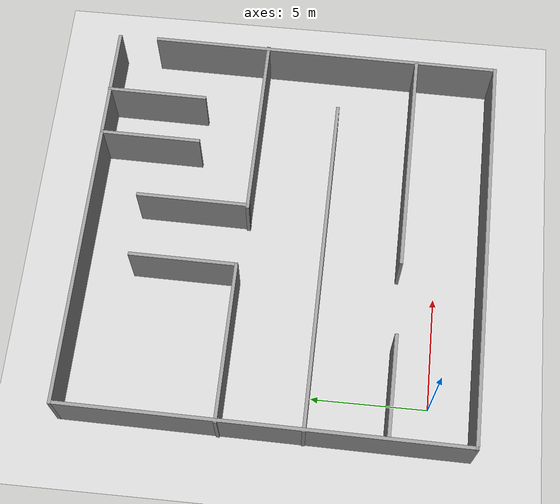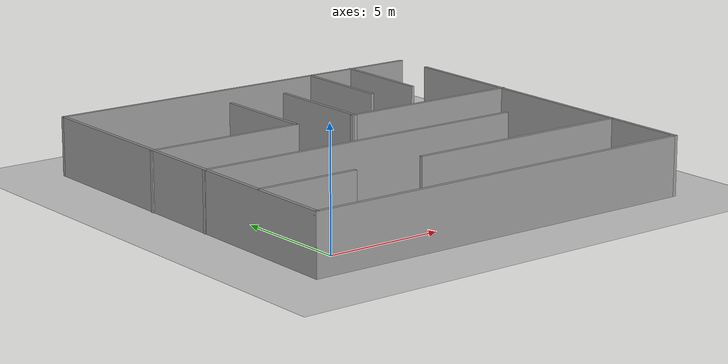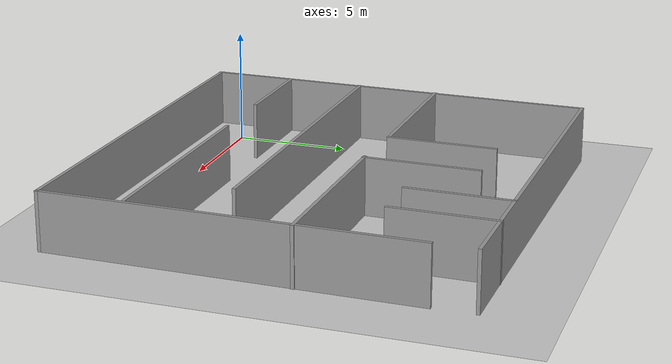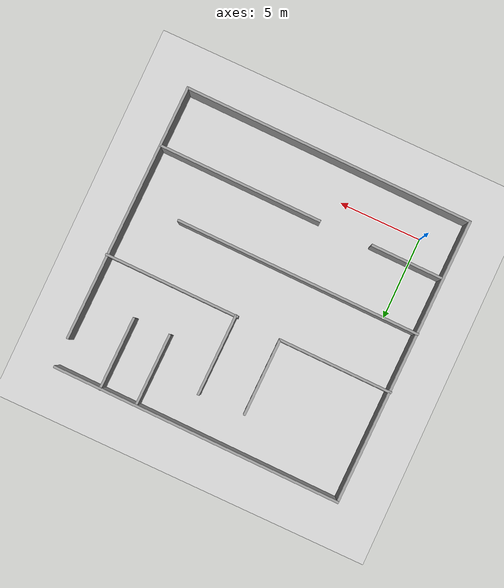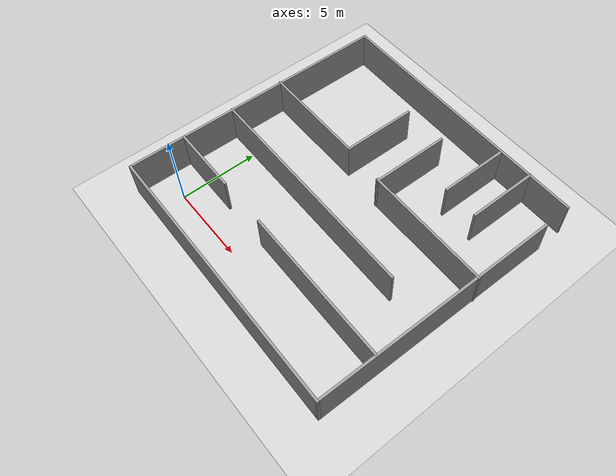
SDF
<sdf version="1.4">
 <world name="default">
  <light name="sun" type="directional">
   <pose>0 0 10 0 -0 0</pose>
   <diffuse>0.8 0.8 0.8 1</diffuse>
   <specular>0.2 0.2 0.2 1</specular>
   <attenuation>
    <range>1000</range>
    <constant>0.9</constant>
    <linear>0.01</linear>
    <quadratic>0.001</quadratic>
   </attenuation>
   <direction>-0.5 0.1 -0.9</direction>
  </light>
  <model name="ground_plane">
   <static>1</static>
   <link name="link">
    <collision name="collision">
     <geometry><plane><normal>0 0 1</normal><size>100 100</size></plane></geometry>
     <surface><friction><ode><mu>100</mu><mu2>50</mu2></ode></friction></surface>
    </collision>
    <visual name="visual">
     <cast_shadows>0</cast_shadows>
     <geometry><plane><normal>0 0 1</normal><size>100 100</size></plane></geometry>
     <material>
      <script><uri>file://media/materials/scripts/gazebo.material</uri><name>Gazebo/Grey</name></script>
     </material>
    </visual>
    <velocity_decay><linear>0</linear><angular>0</angular></velocity_decay>
   </link>
  </model>
  <physics type="ode">
   <max_step_size>0.001</max_step_size>
   <real_time_factor>1</real_time_factor>
   <real_time_update_rate>1000</real_time_update_rate>
   <gravity>0 0 -9.8</gravity>
  </physics>
  <scene><ambient>0.4 0.4 0.4 1</ambient><background>0.7 0.7 0.7 1</background><shadows>1</shadows></scene>
  <spherical_coordinates>
   <surface_model>EARTH_WGS84</surface_model>
   <latitude_deg>0</latitude_deg>
   <longitude_deg>0</longitude_deg>
   <elevation>0</elevation>
   <heading_deg>0</heading_deg>
  </spherical_coordinates>
  <model name="maze1">
   <pose>6.88591 6.7626 0 0 0 -1.58269</pose>
   <link name="Wall_11">
    <collision name="Wall_11_Collision">
     <geometry><box><size>4.5 0.15 2.5</size></box></geometry>
     <pose>0 0 1.25 0 -0 0</pose>
    </collision>
    <visual name="Wall_11_Visual">
     <pose>0 0 1.25 0 -0 0</pose>
     <geometry><box><size>4.5 0.15 2.5</size></box></geometry>
     <material>
      <script><uri>file://media/materials/scripts/gazebo.material</uri><name>Gazebo/Grey</name></script>
      <ambient>1 1 1 1</ambient>
     </material>
    </visual>
    <pose>5.14424 -6.6059 0 0 -0 1.5708</pose>
    <velocity_decay><linear>0</linear><angular>0</angular></velocity_decay>
   </link>
   <link name="Wall_13">
    <collision name="Wall_13_Collision">
     <geometry><box><size>15 0.15 2.5</size></box></geometry>
     <pose>0 0 1.25 0 -0 0</pose>
    </collision>
    <visual name="Wall_13_Visual">
     <pose>0 0 1.25 0 -0 0</pose>
     <geometry><box><size>15 0.15 2.5</size></box></geometry>
     <material>
      <script><uri>file://media/materials/scripts/gazebo.material</uri><name>Gazebo/Grey</name></script>
      <ambient>1 1 1 1</ambient>
     </material>
    </visual>
    <pose>1.72091 -1.40216 0 0 -0 1.5708</pose>
    <velocity_decay><linear>0</linear><angular>0</angular></velocity_decay>
   </link>
   <link name="Wall_15">
    <collision name="Wall_15_Collision">
     <geometry><box><size>4.5 0.15 2.5</size></box></geometry>
     <pose>0 0 1.25 0 -0 0</pose>
    </collision>
    <visual name="Wall_15_Visual">
     <pose>0 0 1.25 0 -0 0</pose>
     <geometry><box><size>4.5 0.15 2.5</size></box></geometry>
     <material>
      <script><uri>file://media/materials/scripts/gazebo.material</uri><name>Gazebo/Grey</name></script>
      <ambient>1 1 1 1</ambient>
     </material>
    </visual>
    <pose>-6.533 5.93017 0 0 -0 3.14159</pose>
    <velocity_decay><linear>0</linear><angular>0</angular></velocity_decay>
   </link>
   <link name="Wall_17">
    <collision name="Wall_17_Collision">
     <geometry><box><size>4.5 0.15 2.5</size></box></geometry>
     <pose>0 0 1.25 0 -0 0</pose>
    </collision>
    <visual name="Wall_17_Visual">
     <pose>0 0 1.25 0 -0 0</pose>
     <geometry><box><size>4.5 0.15 2.5</size></box></geometry>
     <material>
      <script><uri>file://media/materials/scripts/gazebo.material</uri><name>Gazebo/Grey</name></script>
      <ambient>1 1 1 1</ambient>
     </material>
    </visual>
    <pose>-6.51286 3.70963 0 0 -0 0</pose>
    <velocity_decay><linear>0</linear><angular>0</angular></velocity_decay>
   </link>
   <link name="Wall_19">
    <collision name="Wall_19_Collision">
     <geometry><box><size>8.25 0.15 2.5</size></box></geometry>
     <pose>0 0 1.25 0 -0 0</pose>
    </collision>
    <visual name="Wall_19_Visual">
     <pose>0 0 1.25 0 -0 0</pose>
     <geometry><box><size>8.25 0.15 2.5</size></box></geometry>
     <material>
      <script><uri>file://media/materials/scripts/gazebo.material</uri><name>Gazebo/Grey</name></script>
      <ambient>1 1 1 1</ambient>
     </material>
    </visual>
    <pose>-1.74868 4.79891 0 0 -0 1.5708</pose>
    <velocity_decay><linear>0</linear><angular>0</angular></velocity_decay>
   </link>
   <link name="Wall_21">
    <collision name="Wall_21_Collision">
     <geometry><box><size>5 0.15 2.5</size></box></geometry>
     <pose>0 0 1.25 0 -0 0</pose>
    </collision>
    <visual name="Wall_21_Visual">
     <pose>0 0 1.25 0 -0 0</pose>
     <geometry><box><size>5 0.15 2.5</size></box></geometry>
     <material>
      <script><uri>file://media/materials/scripts/gazebo.material</uri><name>Gazebo/Grey</name></script>
      <ambient>1 1 1 1</ambient>
     </material>
    </visual>
    <pose>-4.15544 0.823025 0 0 -0 0</pose>
    <velocity_decay><linear>0</linear><angular>0</angular></velocity_decay>
   </link>
   <link name="Wall_23">
    <collision name="Wall_23_Collision">
     <geometry><box><size>4.75 0.15 2.5</size></box></geometry>
     <pose>0 0 1.25 0 -0 0</pose>
    </collision>
    <visual name="Wall_23_Visual">
     <pose>0 0 1.25 0 -0 0</pose>
     <geometry><box><size>4.75 0.15 2.5</size></box></geometry>
     <material>
      <script><uri>file://media/materials/scripts/gazebo.material</uri><name>Gazebo/Grey</name></script>
      <ambient>1 1 1 1</ambient>
     </material>
    </visual>
    <pose>-4.18792 -1.99891 0 0 -0 0</pose>
    <velocity_decay><linear>0</linear><angular>0</angular></velocity_decay>
   </link>
   <link name="Wall_25">
    <collision name="Wall_25_Collision">
     <geometry><box><size>7 0.15 2.5</size></box></geometry>
     <pose>0 0 1.25 0 -0 0</pose>
    </collision>
    <visual name="Wall_25_Visual">
     <pose>0 0 1.25 0 -0 0</pose>
     <geometry><box><size>7 0.15 2.5</size></box></geometry>
     <material>
      <script><uri>file://media/materials/scripts/gazebo.material</uri><name>Gazebo/Grey</name></script>
      <ambient>1 1 1 1</ambient>
     </material>
    </visual>
    <pose>-1.88792 -5.42391 0 0 0 -1.5708</pose>
    <velocity_decay><linear>0</linear><angular>0</angular></velocity_decay>
   </link>
   <link name="Wall_3">
    <collision name="Wall_3_Collision">
     <geometry><box><size>17.686 0.15 2.5</size></box></geometry>
     <pose>0 0 1.25 0 -0 0</pose>
    </collision>
    <visual name="Wall_3_Visual">
     <pose>0 0 1.25 0 -0 0</pose>
     <geometry><box><size>17.686 0.15 2.5</size></box></geometry>
     <material>
      <script><uri>file://media/materials/scripts/gazebo.material</uri><name>Gazebo/Grey</name></script>
      <ambient>1 1 1 1</ambient>
     </material>
    </visual>
    <pose>-8.68826 -0.027946 0 0 0 -1.5708</pose>
    <velocity_decay><linear>0</linear><angular>0</angular></velocity_decay>
   </link>
   <link name="Wall_4">
    <collision name="Wall_4_Collision">
     <geometry><box><size>17.5 0.15 2.5</size></box></geometry>
     <pose>0 0 1.25 0 -0 0</pose>
    </collision>
    <visual name="Wall_4_Visual">
     <pose>0 0 1.25 0 -0 0</pose>
     <geometry><box><size>17.5 0.15 2.5</size></box></geometry>
     <material>
      <script><uri>file://media/materials/scripts/gazebo.material</uri><name>Gazebo/Grey</name></script>
      <ambient>1 1 1 1</ambient>
     </material>
    </visual>
    <pose>0.032996 -8.79547 0 0 -0 0</pose>
    <velocity_decay><linear>0</linear><angular>0</angular></velocity_decay>
   </link>
   <link name="Wall_6">
    <collision name="Wall_6_Collision">
     <geometry><box><size>17.75 0.15 2.5</size></box></geometry>
     <pose>0 0 1.25 0 -0 0</pose>
    </collision>
    <visual name="Wall_6_Visual">
     <pose>0 0 1.25 0 -0 0</pose>
     <geometry><box><size>17.75 0.15 2.5</size></box></geometry>
     <material>
      <script><uri>file://media/materials/scripts/gazebo.material</uri><name>Gazebo/Grey</name></script>
      <ambient>1 1 1 1</ambient>
     </material>
    </visual>
    <pose>8.708 0.004531 0 0 -0 1.5708</pose>
    <velocity_decay><linear>0</linear><angular>0</angular></velocity_decay>
   </link>
   <link name="Wall_7">
    <collision name="Wall_7_Collision">
     <geometry><box><size>15.75 0.15 2.5</size></box></geometry>
     <pose>0 0 1.25 0 -0 0</pose>
    </collision>
    <visual name="Wall_7_Visual">
     <pose>0 0 1.25 0 -0 0</pose>
     <geometry><box><size>15.75 0.15 2.5</size></box></geometry>
     <material>
      <script><uri>file://media/materials/scripts/gazebo.material</uri><name>Gazebo/Grey</name></script>
      <ambient>1 1 1 1</ambient>
     </material>
    </visual>
    <pose>0.907996 8.80453 0 0 -0 3.14159</pose>
    <velocity_decay><linear>0</linear><angular>0</angular></velocity_decay>
   </link>
   <link name="Wall_9">
    <collision name="Wall_9_Collision">
     <geometry><box><size>10 0.15 2.5</size></box></geometry>
     <pose>0 0 1.25 0 -0 0</pose>
    </collision>
    <visual name="Wall_9_Visual">
     <pose>0 0 1.25 0 -0 0</pose>
     <geometry><box><size>10 0.15 2.5</size></box></geometry>
     <material>
      <script><uri>file://media/materials/scripts/gazebo.material</uri><name>Gazebo/Grey</name></script>
      <ambient>1 1 1 1</ambient>
     </material>
    </visual>
    <pose>5.10845 3.80389 0 0 -0 1.5708</pose>
    <velocity_decay><linear>0</linear><angular>0</angular></velocity_decay>
   </link>
   <static>1</static>
  </model>
 </world>
</sdf>
